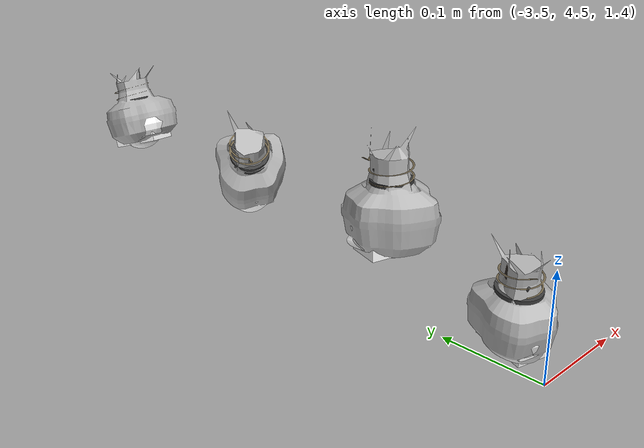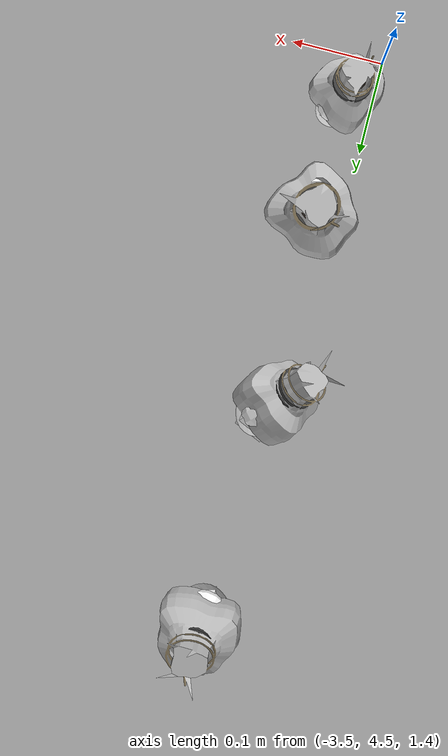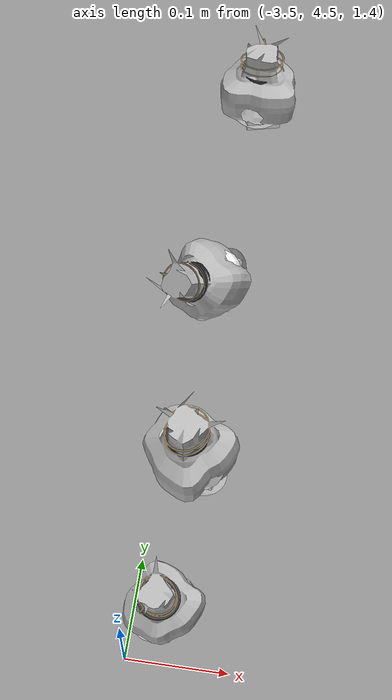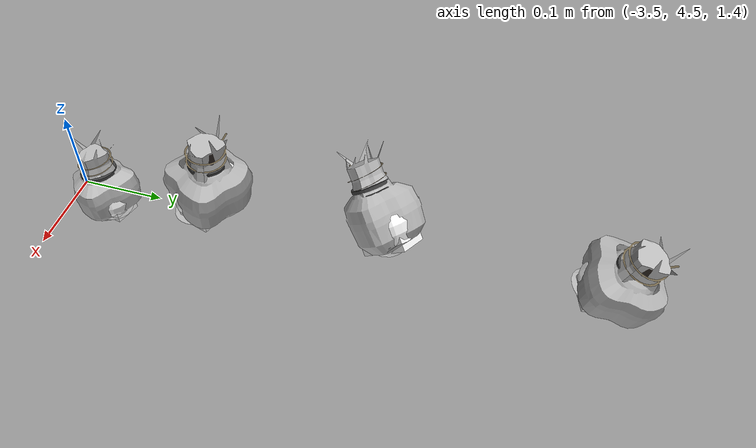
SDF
<sdf version="1.11">
 <world name="peach_orchard">
  <model name="ground">
   <static>true</static>
   <link name="link">
    <visual name="soil">
     <geometry><plane><normal>0 0 1</normal><size>32 22</size></plane></geometry>
     <material>
      <ambient>1 1 1 1</ambient>
      <diffuse>1 1 1 1</diffuse>
      <specular>0.1 0.1 0.1 1</specular>
      <pbr>
       <metal>
        <albedo_map>textures/soil_albedo.png</albedo_map>
        <normal_map type="tangent">textures/soil_normal.png</normal_map>
        <roughness>0.95</roughness>
        <metalness>0</metalness>
       </metal>
      </pbr>
     </material>
    </visual>
    <collision name="c_soil">
     <geometry><plane><normal>0 0 1</normal><size>32 22</size></plane></geometry>
    </collision>
   </link>
  </model>
  <model name="peach_tree_r1_t5_01">
   <pose>-3.46877 4.55215 1.4003 0 0.126016 -2.17746</pose>
   <static>true</static>
   <link name="bag">
    <visual name="bag_mesh">
     <pose>0 0 0.0413609 0 0 -0</pose>
     <geometry>
      <mesh><uri>model://peach_sim/meshes/bagged_peach.glb</uri><scale>0.930324 1.01763 0.94002</scale></mesh>
     </geometry>
    </visual>
    <visual name="body">
     <pose>0 0 0.0233609 0 0 0</pose>
     <geometry><ellipsoid><radii>0.0348872 0.0264584 0.0252297</radii></ellipsoid></geometry>
     <material>
      <ambient>1 1 1 1</ambient>
      <diffuse>1 1 1 1</diffuse>
      <specular>0.1 0.1 0.1 1</specular>
      <pbr>
       <metal>
        <albedo_map>textures/paper_bag_albedo.png</albedo_map>
        <normal_map type="tangent">textures/paper_bag_normal.png</normal_map>
        <roughness>0.72</roughness>
        <metalness>0</metalness>
       </metal>
      </pbr>
     </material>
    </visual>
    <visual name="bottom_fold">
     <pose>0 0 0.012 0 0 0.35</pose>
     <geometry><box><size>0.0540751 0.0304272 0.022</size></box></geometry>
     <material>
      <ambient>1 1 1 1</ambient>
      <diffuse>1 1 1 1</diffuse>
      <specular>0.1 0.1 0.1 1</specular>
      <pbr>
       <metal>
        <albedo_map>textures/paper_bag_albedo.png</albedo_map>
        <normal_map type="tangent">textures/paper_bag_normal.png</normal_map>
        <roughness>0.8</roughness>
        <metalness>0</metalness>
       </metal>
      </pbr>
     </material>
    </visual>
    <visual name="fruit">
     <pose>0 0 0.0217179 0 0 0</pose>
     <geometry><sphere><radius>0.0288266</radius></sphere></geometry>
     <material>
      <ambient>1 1 1 1</ambient>
      <diffuse>1 1 1 1</diffuse>
      <specular>0.1 0.1 0.1 1</specular>
      <pbr>
       <metal>
        <albedo_map>textures/fruit_skin_albedo.png</albedo_map>
        <normal_map type="tangent">textures/fruit_skin_normal.png</normal_map>
        <roughness>0.55</roughness>
        <metalness>0</metalness>
       </metal>
      </pbr>
     </material>
    </visual>
    <visual name="neck">
     <pose>0 0 0.0557217 0 0 0</pose>
     <geometry><cylinder><radius>0.013</radius><length>0.018</length></cylinder></geometry>
     <material>
      <ambient>1 1 1 1</ambient>
      <diffuse>1 1 1 1</diffuse>
      <specular>0.1 0.1 0.1 1</specular>
      <pbr>
       <metal>
        <albedo_map>textures/paper_bag_albedo.png</albedo_map>
        <normal_map type="tangent">textures/paper_bag_normal.png</normal_map>
        <roughness>0.75</roughness>
        <metalness>0</metalness>
       </metal>
      </pbr>
     </material>
    </visual>
    <visual name="gather">
     <pose>0 0 0.0367217 0 0 0</pose>
     <geometry><cylinder><radius>0.019</radius><length>0.02</length></cylinder></geometry>
     <material>
      <ambient>1 1 1 1</ambient>
      <diffuse>1 1 1 1</diffuse>
      <specular>0.1 0.1 0.1 1</specular>
      <pbr>
       <metal>
        <albedo_map>textures/paper_bag_albedo.png</albedo_map>
        <normal_map type="tangent">textures/paper_bag_normal.png</normal_map>
        <roughness>0.8</roughness>
        <metalness>0</metalness>
       </metal>
      </pbr>
     </material>
    </visual>
    <visual name="inner_paper">
     <pose>0 0 0.0607217 0 0 0</pose>
     <geometry><cylinder><radius>0.01</radius><length>0.008</length></cylinder></geometry>
     <material>
      <ambient>0.180392 0.14902 0.133333 1</ambient>
      <diffuse>0.180392 0.14902 0.133333 1</diffuse>
      <specular>0.1 0.1 0.1 1</specular>
     </material>
    </visual>
    <visual name="wire_0">
     <pose>0 0 0.0507217 0 0 0</pose>
     <geometry><cylinder><radius>0.0205</radius><length>0.0035</length></cylinder></geometry>
     <material>
      <ambient>0.25 0.25 0.25 1</ambient>
      <diffuse>0.25 0.25 0.25 1</diffuse>
      <specular>0.1 0.1 0.1 1</specular>
     </material>
    </visual>
    <visual name="wire_1">
     <pose>0 0 0.0577217 0 0 0</pose>
     <geometry><cylinder><radius>0.0205</radius><length>0.0035</length></cylinder></geometry>
     <material>
      <ambient>0.25 0.25 0.25 1</ambient>
      <diffuse>0.25 0.25 0.25 1</diffuse>
      <specular>0.1 0.1 0.1 1</specular>
     </material>
    </visual>
    <visual name="wire_tail">
     <pose>0.01 0 0.0587217 0 0.521618 0</pose>
     <geometry><cylinder><radius>0.0012</radius><length>0.026</length></cylinder></geometry>
     <material>
      <ambient>0.25 0.25 0.25 1</ambient>
      <diffuse>0.25 0.25 0.25 1</diffuse>
      <specular>0.1 0.1 0.1 1</specular>
     </material>
    </visual>
    <collision name="c_body">
     <pose>0 0 0.0233609 0 0 0</pose>
     <geometry><cylinder><radius>0.0348872</radius><length>0.0467217</length></cylinder></geometry>
    </collision>
   </link>
  </model>
  <model name="peach_tree_r1_t5_02">
   <pose>-3.46586 4.68825 1.44384 0 0.0389832 2.49128</pose>
   <static>true</static>
   <link name="bag">
    <visual name="bag_mesh">
     <pose>0 0 0.0472417 0 0 0</pose>
     <geometry>
      <mesh><uri>model://peach_sim/meshes/bagged_peach.glb</uri><scale>1.09204 1.2081 1.07368</scale></mesh>
     </geometry>
    </visual>
    <visual name="body">
     <pose>0 0 0.0292417 0 0 0</pose>
     <geometry><ellipsoid><radii>0.0409517 0.0314107 0.0315811</radii></ellipsoid></geometry>
     <material>
      <ambient>1 1 1 1</ambient>
      <diffuse>1 1 1 1</diffuse>
      <specular>0.1 0.1 0.1 1</specular>
      <pbr>
       <metal>
        <albedo_map>textures/paper_bag_albedo.png</albedo_map>
        <normal_map type="tangent">textures/paper_bag_normal.png</normal_map>
        <roughness>0.72</roughness>
        <metalness>0</metalness>
       </metal>
      </pbr>
     </material>
    </visual>
    <visual name="bottom_fold">
     <pose>0 0 0.012 0 0 0.35</pose>
     <geometry><box><size>0.0634751 0.0361223 0.022</size></box></geometry>
     <material>
      <ambient>1 1 1 1</ambient>
      <diffuse>1 1 1 1</diffuse>
      <specular>0.1 0.1 0.1 1</specular>
      <pbr>
       <metal>
        <albedo_map>textures/paper_bag_albedo.png</albedo_map>
        <normal_map type="tangent">textures/paper_bag_normal.png</normal_map>
        <roughness>0.8</roughness>
        <metalness>0</metalness>
       </metal>
      </pbr>
     </material>
    </visual>
    <visual name="fruit">
     <pose>0 0 0.0209968 0 0 0</pose>
     <geometry><sphere><radius>0.0280767</radius></sphere></geometry>
     <material>
      <ambient>1 1 1 1</ambient>
      <diffuse>1 1 1 1</diffuse>
      <specular>0.1 0.1 0.1 1</specular>
      <pbr>
       <metal>
        <albedo_map>textures/fruit_skin_albedo.png</albedo_map>
        <normal_map type="tangent">textures/fruit_skin_normal.png</normal_map>
        <roughness>0.55</roughness>
        <metalness>0</metalness>
       </metal>
      </pbr>
     </material>
    </visual>
    <visual name="neck">
     <pose>0 0 0.0674835 0 0 0</pose>
     <geometry><cylinder><radius>0.013</radius><length>0.018</length></cylinder></geometry>
     <material>
      <ambient>1 1 1 1</ambient>
      <diffuse>1 1 1 1</diffuse>
      <specular>0.1 0.1 0.1 1</specular>
      <pbr>
       <metal>
        <albedo_map>textures/paper_bag_albedo.png</albedo_map>
        <normal_map type="tangent">textures/paper_bag_normal.png</normal_map>
        <roughness>0.75</roughness>
        <metalness>0</metalness>
       </metal>
      </pbr>
     </material>
    </visual>
    <visual name="gather">
     <pose>0 0 0.0484835 0 0 0</pose>
     <geometry><cylinder><radius>0.019</radius><length>0.02</length></cylinder></geometry>
     <material>
      <ambient>1 1 1 1</ambient>
      <diffuse>1 1 1 1</diffuse>
      <specular>0.1 0.1 0.1 1</specular>
      <pbr>
       <metal>
        <albedo_map>textures/paper_bag_albedo.png</albedo_map>
        <normal_map type="tangent">textures/paper_bag_normal.png</normal_map>
        <roughness>0.8</roughness>
        <metalness>0</metalness>
       </metal>
      </pbr>
     </material>
    </visual>
    <visual name="inner_paper">
     <pose>0 0 0.0724835 0 0 0</pose>
     <geometry><cylinder><radius>0.01</radius><length>0.008</length></cylinder></geometry>
     <material>
      <ambient>0.180392 0.14902 0.133333 1</ambient>
      <diffuse>0.180392 0.14902 0.133333 1</diffuse>
      <specular>0.1 0.1 0.1 1</specular>
     </material>
    </visual>
    <visual name="wire_0">
     <pose>0 0 0.0624835 0 0 0</pose>
     <geometry><cylinder><radius>0.0205</radius><length>0.0035</length></cylinder></geometry>
     <material>
      <ambient>0.25 0.25 0.25 1</ambient>
      <diffuse>0.25 0.25 0.25 1</diffuse>
      <specular>0.1 0.1 0.1 1</specular>
     </material>
    </visual>
    <visual name="wire_1">
     <pose>0 0 0.0694835 0 0 0</pose>
     <geometry><cylinder><radius>0.0205</radius><length>0.0035</length></cylinder></geometry>
     <material>
      <ambient>0.25 0.25 0.25 1</ambient>
      <diffuse>0.25 0.25 0.25 1</diffuse>
      <specular>0.1 0.1 0.1 1</specular>
     </material>
    </visual>
    <visual name="wire_tail">
     <pose>0.01 0 0.0704835 0 0.521618 0</pose>
     <geometry><cylinder><radius>0.0012</radius><length>0.026</length></cylinder></geometry>
     <material>
      <ambient>0.25 0.25 0.25 1</ambient>
      <diffuse>0.25 0.25 0.25 1</diffuse>
      <specular>0.1 0.1 0.1 1</specular>
     </material>
    </visual>
    <collision name="c_body">
     <pose>0 0 0.0292417 0 0 0</pose>
     <geometry><cylinder><radius>0.0409517</radius><length>0.0584835</length></cylinder></geometry>
    </collision>
   </link>
  </model>
  <model name="peach_tree_r1_t5_03">
   <pose>-3.46249 4.89589 1.45 0 0.724516 -2.27993</pose>
   <static>true</static>
   <link name="bag">
    <visual name="bag_mesh">
     <pose>0 0 0.0482395 0 0 -0</pose>
     <geometry>
      <mesh><uri>model://peach_sim/meshes/bagged_peach.glb</uri><scale>0.980178 1.07989 1.09635</scale></mesh>
     </geometry>
    </visual>
    <visual name="body">
     <pose>0 0 0.0302395 0 0 0</pose>
     <geometry><ellipsoid><radii>0.0367567 0.0280772 0.0326587</radii></ellipsoid></geometry>
     <material>
      <ambient>1 1 1 1</ambient>
      <diffuse>1 1 1 1</diffuse>
      <specular>0.1 0.1 0.1 1</specular>
      <pbr>
       <metal>
        <albedo_map>textures/paper_bag_albedo.png</albedo_map>
        <normal_map type="tangent">textures/paper_bag_normal.png</normal_map>
        <roughness>0.72</roughness>
        <metalness>0</metalness>
       </metal>
      </pbr>
     </material>
    </visual>
    <visual name="bottom_fold">
     <pose>0 0 0.012 0 0 0.35</pose>
     <geometry><box><size>0.0569728 0.0322888 0.022</size></box></geometry>
     <material>
      <ambient>1 1 1 1</ambient>
      <diffuse>1 1 1 1</diffuse>
      <specular>0.1 0.1 0.1 1</specular>
      <pbr>
       <metal>
        <albedo_map>textures/paper_bag_albedo.png</albedo_map>
        <normal_map type="tangent">textures/paper_bag_normal.png</normal_map>
        <roughness>0.8</roughness>
        <metalness>0</metalness>
       </metal>
      </pbr>
     </material>
    </visual>
    <visual name="fruit">
     <pose>0 0 0.020526 0 0 0</pose>
     <geometry><sphere><radius>0.027587</radius></sphere></geometry>
     <material>
      <ambient>1 1 1 1</ambient>
      <diffuse>1 1 1 1</diffuse>
      <specular>0.1 0.1 0.1 1</specular>
      <pbr>
       <metal>
        <albedo_map>textures/fruit_skin_albedo.png</albedo_map>
        <normal_map type="tangent">textures/fruit_skin_normal.png</normal_map>
        <roughness>0.55</roughness>
        <metalness>0</metalness>
       </metal>
      </pbr>
     </material>
    </visual>
    <visual name="neck">
     <pose>0 0 0.0694791 0 0 0</pose>
     <geometry><cylinder><radius>0.013</radius><length>0.018</length></cylinder></geometry>
     <material>
      <ambient>1 1 1 1</ambient>
      <diffuse>1 1 1 1</diffuse>
      <specular>0.1 0.1 0.1 1</specular>
      <pbr>
       <metal>
        <albedo_map>textures/paper_bag_albedo.png</albedo_map>
        <normal_map type="tangent">textures/paper_bag_normal.png</normal_map>
        <roughness>0.75</roughness>
        <metalness>0</metalness>
       </metal>
      </pbr>
     </material>
    </visual>
    <visual name="gather">
     <pose>0 0 0.0504791 0 0 0</pose>
     <geometry><cylinder><radius>0.019</radius><length>0.02</length></cylinder></geometry>
     <material>
      <ambient>1 1 1 1</ambient>
      <diffuse>1 1 1 1</diffuse>
      <specular>0.1 0.1 0.1 1</specular>
      <pbr>
       <metal>
        <albedo_map>textures/paper_bag_albedo.png</albedo_map>
        <normal_map type="tangent">textures/paper_bag_normal.png</normal_map>
        <roughness>0.8</roughness>
        <metalness>0</metalness>
       </metal>
      </pbr>
     </material>
    </visual>
    <visual name="inner_paper">
     <pose>0 0 0.0744791 0 0 0</pose>
     <geometry><cylinder><radius>0.01</radius><length>0.008</length></cylinder></geometry>
     <material>
      <ambient>0.180392 0.14902 0.133333 1</ambient>
      <diffuse>0.180392 0.14902 0.133333 1</diffuse>
      <specular>0.1 0.1 0.1 1</specular>
     </material>
    </visual>
    <visual name="wire_0">
     <pose>0 0 0.0644791 0 0 0</pose>
     <geometry><cylinder><radius>0.0205</radius><length>0.0035</length></cylinder></geometry>
     <material>
      <ambient>0.25 0.25 0.25 1</ambient>
      <diffuse>0.25 0.25 0.25 1</diffuse>
      <specular>0.1 0.1 0.1 1</specular>
     </material>
    </visual>
    <visual name="wire_1">
     <pose>0 0 0.0714791 0 0 0</pose>
     <geometry><cylinder><radius>0.0205</radius><length>0.0035</length></cylinder></geometry>
     <material>
      <ambient>0.25 0.25 0.25 1</ambient>
      <diffuse>0.25 0.25 0.25 1</diffuse>
      <specular>0.1 0.1 0.1 1</specular>
     </material>
    </visual>
    <visual name="wire_tail">
     <pose>0.01 0 0.0724791 0 0.521618 0</pose>
     <geometry><cylinder><radius>0.0012</radius><length>0.026</length></cylinder></geometry>
     <material>
      <ambient>0.25 0.25 0.25 1</ambient>
      <diffuse>0.25 0.25 0.25 1</diffuse>
      <specular>0.1 0.1 0.1 1</specular>
     </material>
    </visual>
    <collision name="c_body">
     <pose>0 0 0.0302395 0 0 0</pose>
     <geometry><cylinder><radius>0.0367567</radius><length>0.0604791</length></cylinder></geometry>
    </collision>
   </link>
  </model>
  <model name="peach_tree_r1_t5_04">
   <pose>-3.45821 5.10843 1.45 0 0.30917 1.55037</pose>
   <static>true</static>
   <link name="bag">
    <visual name="bag_mesh">
     <pose>0 0 0.0399653 0 0 0</pose>
     <geometry>
      <mesh><uri>model://peach_sim/meshes/bagged_peach.glb</uri><scale>1.02407 1.20895 0.908302</scale></mesh>
     </geometry>
    </visual>
    <visual name="body">
     <pose>0 0 0.0219653 0 0 0</pose>
     <geometry><ellipsoid><radii>0.0384028 0.0314328 0.0237225</radii></ellipsoid></geometry>
     <material>
      <ambient>1 1 1 1</ambient>
      <diffuse>1 1 1 1</diffuse>
      <specular>0.1 0.1 0.1 1</specular>
      <pbr>
       <metal>
        <albedo_map>textures/paper_bag_albedo.png</albedo_map>
        <normal_map type="tangent">textures/paper_bag_normal.png</normal_map>
        <roughness>0.72</roughness>
        <metalness>0</metalness>
       </metal>
      </pbr>
     </material>
    </visual>
    <visual name="bottom_fold">
     <pose>0 0 0.012 0 0 0.35</pose>
     <geometry><box><size>0.0595243 0.0361477 0.022</size></box></geometry>
     <material>
      <ambient>1 1 1 1</ambient>
      <diffuse>1 1 1 1</diffuse>
      <specular>0.1 0.1 0.1 1</specular>
      <pbr>
       <metal>
        <albedo_map>textures/paper_bag_albedo.png</albedo_map>
        <normal_map type="tangent">textures/paper_bag_normal.png</normal_map>
        <roughness>0.8</roughness>
        <metalness>0</metalness>
       </metal>
      </pbr>
     </material>
    </visual>
    <visual name="fruit">
     <pose>0 0 0.020937 0 0 0</pose>
     <geometry><sphere><radius>0.0280144</radius></sphere></geometry>
     <material>
      <ambient>1 1 1 1</ambient>
      <diffuse>1 1 1 1</diffuse>
      <specular>0.1 0.1 0.1 1</specular>
      <pbr>
       <metal>
        <albedo_map>textures/fruit_skin_albedo.png</albedo_map>
        <normal_map type="tangent">textures/fruit_skin_normal.png</normal_map>
        <roughness>0.55</roughness>
        <metalness>0</metalness>
       </metal>
      </pbr>
     </material>
    </visual>
    <visual name="neck">
     <pose>0 0 0.0529306 0 0 0</pose>
     <geometry><cylinder><radius>0.013</radius><length>0.018</length></cylinder></geometry>
     <material>
      <ambient>1 1 1 1</ambient>
      <diffuse>1 1 1 1</diffuse>
      <specular>0.1 0.1 0.1 1</specular>
      <pbr>
       <metal>
        <albedo_map>textures/paper_bag_albedo.png</albedo_map>
        <normal_map type="tangent">textures/paper_bag_normal.png</normal_map>
        <roughness>0.75</roughness>
        <metalness>0</metalness>
       </metal>
      </pbr>
     </material>
    </visual>
    <visual name="gather">
     <pose>0 0 0.0339306 0 0 0</pose>
     <geometry><cylinder><radius>0.019</radius><length>0.02</length></cylinder></geometry>
     <material>
      <ambient>1 1 1 1</ambient>
      <diffuse>1 1 1 1</diffuse>
      <specular>0.1 0.1 0.1 1</specular>
      <pbr>
       <metal>
        <albedo_map>textures/paper_bag_albedo.png</albedo_map>
        <normal_map type="tangent">textures/paper_bag_normal.png</normal_map>
        <roughness>0.8</roughness>
        <metalness>0</metalness>
       </metal>
      </pbr>
     </material>
    </visual>
    <visual name="inner_paper">
     <pose>0 0 0.0579306 0 0 0</pose>
     <geometry><cylinder><radius>0.01</radius><length>0.008</length></cylinder></geometry>
     <material>
      <ambient>0.180392 0.14902 0.133333 1</ambient>
      <diffuse>0.180392 0.14902 0.133333 1</diffuse>
      <specular>0.1 0.1 0.1 1</specular>
     </material>
    </visual>
    <visual name="wire_0">
     <pose>0 0 0.0479306 0 0 0</pose>
     <geometry><cylinder><radius>0.0205</radius><length>0.0035</length></cylinder></geometry>
     <material>
      <ambient>0.25 0.25 0.25 1</ambient>
      <diffuse>0.25 0.25 0.25 1</diffuse>
      <specular>0.1 0.1 0.1 1</specular>
     </material>
    </visual>
    <visual name="wire_1">
     <pose>0 0 0.0549306 0 0 0</pose>
     <geometry><cylinder><radius>0.0205</radius><length>0.0035</length></cylinder></geometry>
     <material>
      <ambient>0.25 0.25 0.25 1</ambient>
      <diffuse>0.25 0.25 0.25 1</diffuse>
      <specular>0.1 0.1 0.1 1</specular>
     </material>
    </visual>
    <visual name="wire_tail">
     <pose>0.01 0 0.0559306 0 0.521618 0</pose>
     <geometry><cylinder><radius>0.0012</radius><length>0.026</length></cylinder></geometry>
     <material>
      <ambient>0.25 0.25 0.25 1</ambient>
      <diffuse>0.25 0.25 0.25 1</diffuse>
      <specular>0.1 0.1 0.1 1</specular>
     </material>
    </visual>
    <collision name="c_body">
     <pose>0 0 0.0219653 0 0 0</pose>
     <geometry><cylinder><radius>0.0384028</radius><length>0.0439306</length></cylinder></geometry>
    </collision>
   </link>
  </model>
 </world>
</sdf>
